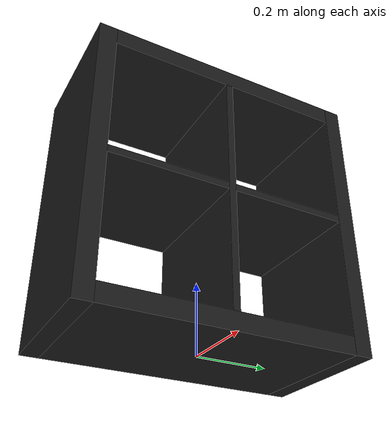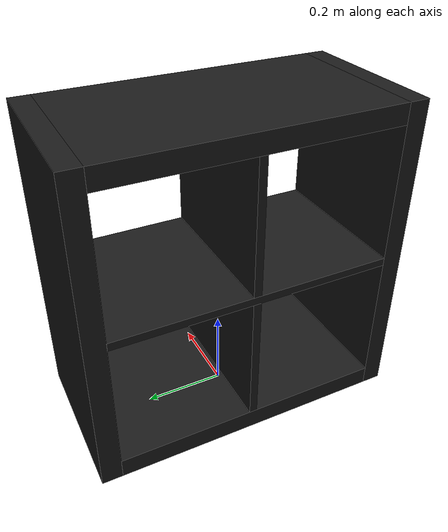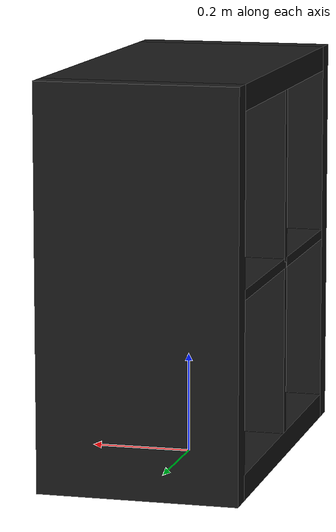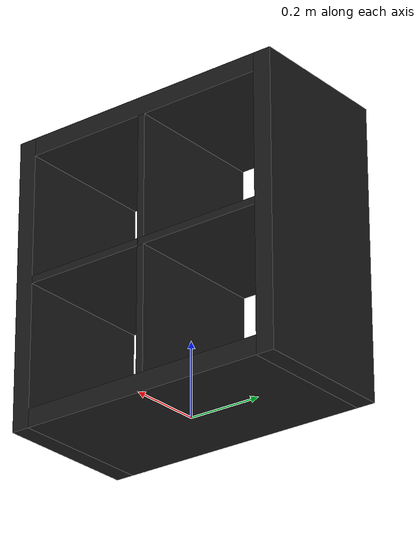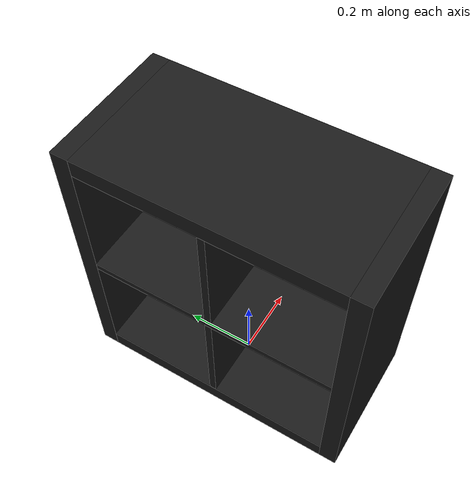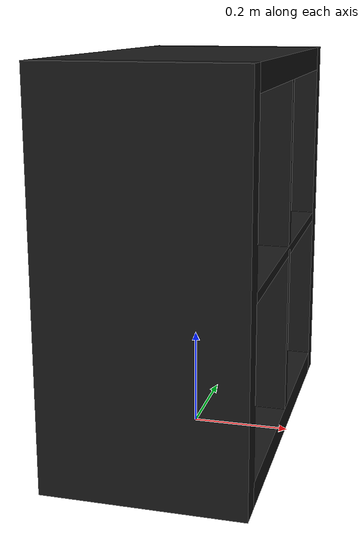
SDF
<?xml version="1.0" ?>
<sdf version="1.6">
  <model name="robotics_testlab_B/corridor_cabinet">
    <link name="1">
      <collision name="1">
        <geometry>
          <box>
            <size>0.395 0.05 0.79</size>
          </box>
        </geometry>
        <name>1</name>
      </collision>
      <visual name="1">
        <geometry>
          <box>
            <size>0.395 0.05 0.79</size>
          </box>
        </geometry>
        <material>
          <ambient>0.1 0.1 0.1 1</ambient>
        </material>
        <name>1</name>
      </visual>
      <pose>0 -0.37 0.395 0 0 0</pose>
      <name>1</name>
    </link>
    <link name="2">
      <collision name="2">
        <geometry>
          <box>
            <size>0.395 0.05 0.79</size>
          </box>
        </geometry>
        <name>2</name>
      </collision>
      <visual name="2">
        <geometry>
          <box>
            <size>0.395 0.05 0.79</size>
          </box>
        </geometry>
        <material>
          <ambient>0.1 0.1 0.1 1</ambient>
        </material>
        <name>2</name>
      </visual>
      <pose>0 0.37 0.395 0 0 0</pose>
      <name>2</name>
    </link>
    <link name="3">
      <collision name="3">
        <geometry>
          <box>
            <size>0.395 0.69 0.05</size>
          </box>
        </geometry>
        <name>3</name>
      </collision>
      <visual name="3">
        <geometry>
          <box>
            <size>0.395 0.69 0.05</size>
          </box>
        </geometry>
        <material>
          <ambient>0.1 0.1 0.1 1</ambient>
        </material>
        <name>3</name>
      </visual>
      <pose>0 0 0.765 0 0 0</pose>
      <name>3</name>
    </link>
    <link name="4">
      <collision name="4">
        <geometry>
          <box>
            <size>0.395 0.69 0.05</size>
          </box>
        </geometry>
        <name>4</name>
      </collision>
      <visual name="4">
        <geometry>
          <box>
            <size>0.395 0.69 0.05</size>
          </box>
        </geometry>
        <material>
          <ambient>0.1 0.1 0.1 1</ambient>
        </material>
        <name>4</name>
      </visual>
      <pose>0 0 0.025 0 0 0</pose>
      <name>4</name>
    </link>
    <link name="5">
      <collision name="5">
        <geometry>
          <box>
            <size>0.395 0.69 0.02</size>
          </box>
        </geometry>
        <name>5</name>
      </collision>
      <visual name="5">
        <geometry>
          <box>
            <size>0.395 0.69 0.02</size>
          </box>
        </geometry>
        <material>
          <ambient>0.1 0.1 0.1 1</ambient>
        </material>
        <name>5</name>
      </visual>
      <pose>0 0 0.395 0 0 0</pose>
      <name>5</name>
    </link>
    <link name="6">
      <collision name="6">
        <geometry>
          <box>
            <size>0.395 0.02 0.69</size>
          </box>
        </geometry>
        <name>6</name>
      </collision>
      <visual name="6">
        <geometry>
          <box>
            <size>0.395 0.02 0.69</size>
          </box>
        </geometry>
        <material>
          <ambient>0.1 0.1 0.1 1</ambient>
        </material>
        <name>6</name>
      </visual>
      <pose>0 0 0.395 0 0 0</pose>
      <name>6</name>
    </link>
    <link name="in_front_of">
      <virtual_area name="in_front_of">
        <geometry>
          <box>
            <size>0.7 0.79 0</size>
          </box>
        </geometry>
        <pose>0.35 0.0 0.0 0 0 0</pose>
        <name>in_front_of</name>
      </virtual_area>
      <name>in_front_of</name>
    </link>
    <link name="on_top_of">
      <virtual_area name="on_top_of">
        <geometry>
          <box>
            <size>0.34 0.74 0.39</size>
          </box>
        </geometry>
        <pose>0.0 0.0 1.005 0 0 0</pose>
        <name>on_top_of</name>
      </virtual_area>
      <name>on_top_of</name>
    </link>
    <static>true</static>
    <name>robotics_testlab_B/corridor_cabinet</name>
  </model>
</sdf>
